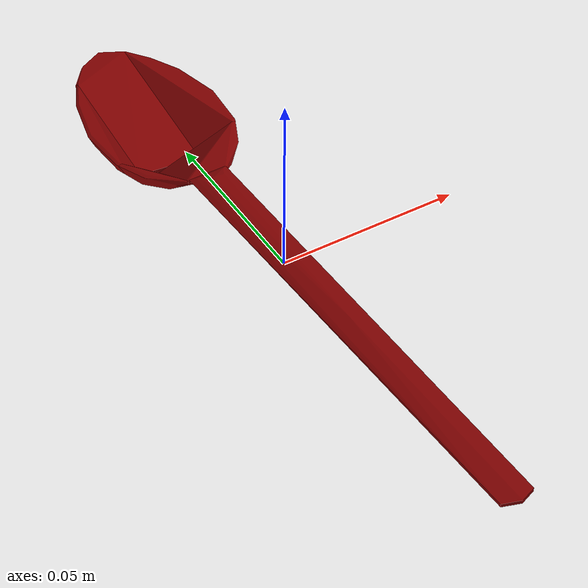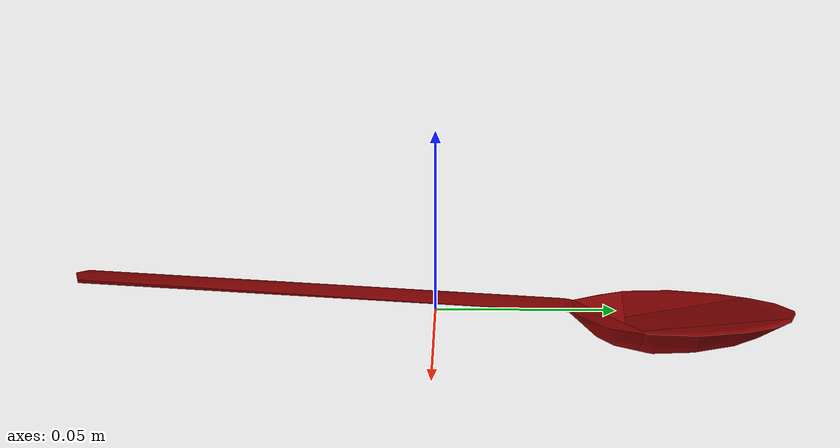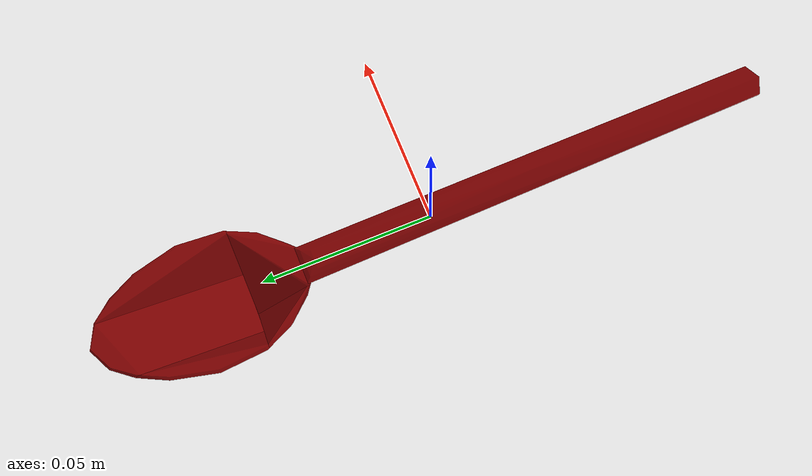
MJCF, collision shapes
<?xml version='1.0' encoding='utf-8'?>
<mujoco model="spoon_35">
  <asset>
    <mesh file="visual/model_normalized_0.obj" name="model_normalized_0_vis" scale="0.2 0.2 0.2" refquat="0.7071067811865475 0.0 0.0 0.7071067811865476" />
    <material name="Spoon" specular="0.5" shininess="0.198526085" rgba="0.310000 0.310000 0.310000 1.0" />
    <mesh file="collision/collision_mesh_collision_0.obj" name="spoon_collision_mesh_0" scale="0.2 0.2 0.2" refquat="0.7071067811865475 0.0 0.0 0.7071067811865476" />
    <mesh file="collision/collision_mesh_collision_1.obj" name="spoon_collision_mesh_1" scale="0.2 0.2 0.2" refquat="0.7071067811865475 0.0 0.0 0.7071067811865476" />
    <mesh file="collision/collision_mesh_collision_2.obj" name="spoon_collision_mesh_2" scale="0.2 0.2 0.2" refquat="0.7071067811865475 0.0 0.0 0.7071067811865476" />
    <mesh file="collision/collision_mesh_collision_3.obj" name="spoon_collision_mesh_3" scale="0.2 0.2 0.2" refquat="0.7071067811865475 0.0 0.0 0.7071067811865476" />
    <mesh file="collision/collision_mesh_collision_4.obj" name="spoon_collision_mesh_4" scale="0.2 0.2 0.2" refquat="0.7071067811865475 0.0 0.0 0.7071067811865476" />
    <mesh file="collision/collision_mesh_collision_5.obj" name="spoon_collision_mesh_5" scale="0.2 0.2 0.2" refquat="0.7071067811865475 0.0 0.0 0.7071067811865476" />
  </asset>
  <default>
    <default class="region">
      <geom group="1" conaffinity="0" contype="0" rgba="0 1 0 0" />
    </default>
    <default class="collision">
      <geom group="0" rgba="0.5 0 0 0.5" density="1000.0" />
    </default>
  </default>
  <worldbody>
    <body>
      <body name="object">
        <geom solimp="0.998 0.998 0.001" solref="0.001 1" density="100" friction="0.95 0.3 0.1" type="mesh" mesh="model_normalized_0_vis" conaffinity="0" contype="0" group="1" material="Spoon" />
        <geom class="region" name="reg_bbox" type="box" pos="0.0 6.777000000002254e-06 0.0" size="0.01917361 0.099993223 0.010178628000000002" />
        <geom mesh="spoon_collision_mesh_0" type="mesh" class="collision" />
        <geom mesh="spoon_collision_mesh_1" type="mesh" class="collision" />
        <geom mesh="spoon_collision_mesh_2" type="mesh" class="collision" />
        <geom mesh="spoon_collision_mesh_3" type="mesh" class="collision" />
        <geom mesh="spoon_collision_mesh_4" type="mesh" class="collision" />
        <geom mesh="spoon_collision_mesh_5" type="mesh" class="collision" />
      </body>
    <site rgba="0 0 0 0" size="0.005" pos="0 0 -0.010178628" name="bottom_site" /><site rgba="0 0 0 0" size="0.005" pos="0 0 0.010178628" name="top_site" /><site rgba="0 0 0 0" size="0.005" pos="0.1 0.1 0" name="horizontal_radius_site" /></body>
  </worldbody>
</mujoco>
